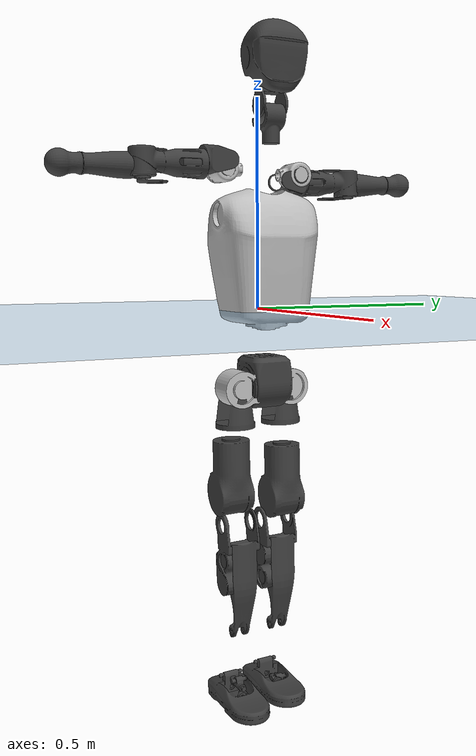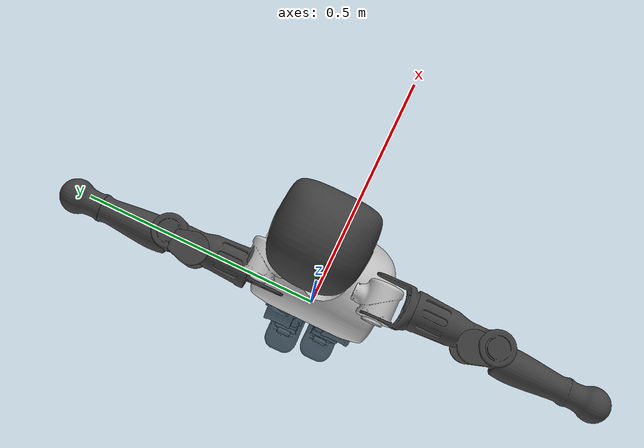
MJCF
<mujoco model="T1">
  <compiler angle="radian" assetdir="assets" balanceinertia="true" inertiafromgeom="false"/>

  <option timestep="0.005" density="1.2" viscosity="2e-05"/>

  <size nkey="1"/>

  <visual>
    <quality shadowsize="8192"/>
    <map shadowclip="0.5"/>
  </visual>

  <default>
    <default class="/">
      <joint armature="0.01" damping="0.01" frictionloss="0.1"/>
      <geom contype="0" conaffinity="0" group="1" solref="-1000 -80"/>
      <site size="0.01 0.005 0.005" group="5"/>
      <general forcelimited="true" biastype="affine" gainprm="25" biasprm="0 -25 -0.6"/>
      <default class="t1">
        <geom rgba="0.25 0.25 0.25 1"/>
        <default class="visual">
          <geom type="mesh" group="2"/>
        </default>
        <default class="collision">
          <geom group="3"/>
        </default>
        <default class="foot">
          <geom size="0.1115 0.05 0.015" type="box" condim="6" group="4" priority="1" solimp="0.015 1 0.015"/>
        </default>
        <default class="reward_collision_sphere">
          <geom group="5" rgba="1 0 0 1"/>
        </default>
      </default>
    </default>
  </default>

  <asset>
    <texture type="skybox" colorspace="auto" name="//unnamed_texture_0" builtin="gradient" rgb1="0.95 0.95 0.95" rgb2="0.95 0.95 0.95" width="100" height="600"/>
    <texture type="2d" colorspace="auto" name="texplane" builtin="checker" rgb1="0.345 0.575 0.748" rgb2="0.345 0.575 0.748" markrgb="1 1 1" width="512" height="512"/>
    <material name="MatPlane" class="/" texture="texplane" texuniform="true" texrepeat="2 2" specular="0.9"/>
    <mesh name="Trunk" class="/" file="Trunk.stl"/>
    <mesh name="H1" class="/" file="H1.stl"/>
    <mesh name="H2" class="/" file="H2.stl"/>
    <mesh name="AL1" class="/" file="AL1.stl"/>
    <mesh name="AL2" class="/" file="AL2.stl"/>
    <mesh name="AL3" class="/" file="AL3.stl"/>
    <mesh name="left_hand_link" class="/" file="left_hand_link.stl"/>
    <mesh name="AR1" class="/" file="AR1.stl"/>
    <mesh name="AR2" class="/" file="AR2.stl"/>
    <mesh name="AR3" class="/" file="AR3.stl"/>
    <mesh name="right_hand_link" class="/" file="right_hand_link.stl"/>
    <mesh name="Waist" class="/" file="Waist.stl"/>
    <mesh name="Hip_Pitch_Left" class="/" file="Hip_Pitch_Left.stl"/>
    <mesh name="Hip_Roll_Left" class="/" file="Hip_Roll_Left.stl"/>
    <mesh name="Hip_Yaw_Left" class="/" file="Hip_Yaw_Left.stl"/>
    <mesh name="Shank_Left" class="/" file="Shank_Left.stl"/>
    <mesh name="Ankle_Cross_Left" class="/" file="Ankle_Cross_Left.stl"/>
    <mesh name="left_foot_link" class="/" file="left_foot_link.stl"/>
    <mesh name="Hip_Pitch_Right" class="/" file="Hip_Pitch_Right.stl"/>
    <mesh name="Hip_Roll_Right" class="/" file="Hip_Roll_Right.stl"/>
    <mesh name="Hip_Yaw_Right" class="/" file="Hip_Yaw_Right.stl"/>
    <mesh name="Shank_Right" class="/" file="Shank_Right.stl"/>
    <mesh name="Ankle_Cross_Right" class="/" file="Ankle_Cross_Right.stl"/>
    <mesh name="right_foot_link" class="/" file="right_foot_link.stl"/>
  </asset>

  <worldbody>
    <geom name="floor" class="/" size="100 100 0.125" type="plane" group="0" material="MatPlane"/>
    <light name="toplight_shadow" class="/" pos="0 0 5" dir="0.0990148 0.0990148 -0.990148" type="directional" ambient="0.04 0.04 0.04" diffuse="0.55 0.55 0.55" specular="0.12 0.12 0.12"/>
    <light name="toplight_fill" class="/" pos="0 0 5" dir="0.0990148 0.0990148 -0.990148" type="directional" castshadow="false" ambient="0.04 0.04 0.04" diffuse="0.3 0.3 0.3" specular="0.08 0.08 0.08"/>
    <body name="trunk" childclass="t1" pos="-0.0138558 -0.0026933 0.00390278" quat="0.999993 0.00326273 -0.00189259 0.000237235">
      <inertial pos="0.0295319 -0.00213682 0.170066" quat="0.998464 0.0366868 -0.041499 -0.000964381" mass="8.29556" diaginertia="0.00645527 0.0104646 0.396049"/>
      <joint name="//unnamed_joint_0" type="free" armature="0" damping="0" frictionloss="0"/>
      <geom name="//unnamed_geom_1" class="visual" rgba="0.76 0.76 0.76 1" mesh="Trunk"/>
      <geom name="//unnamed_geom_2" class="collision" size="0.0699732 0.0932975 0.139946" pos="0.0371148 0 0.180331" type="box"/>
      <geom name="//unnamed_geom_3" class="reward_collision_sphere" size="0.107292" pos="0.0371148 0 0.150276"/>
      <geom name="//unnamed_geom_4" class="reward_collision_sphere" size="0.0139946" pos="0.0371148 0.0575948 0"/>
      <geom name="//unnamed_geom_5" class="reward_collision_sphere" size="0.0139946" pos="0.0371148 -0.0575948 0"/>
      <geom name="//unnamed_geom_6" class="reward_collision_sphere" size="0.0139946" pos="0.0371148 0.0725017 0.270497"/>
      <geom name="//unnamed_geom_7" class="reward_collision_sphere" size="0.0139946" pos="0.0371148 -0.0725017 0.270497"/>
      <site name="imu" pos="0.0905955 0.0552923 -0.073843" size="0.00932975"/>
      <camera name="track" pos="0 -1.35517 0" quat="0.707107 0.707107 0 0" mode="trackcom"/>
      <camera name="ego_camera" pos="0.0754667 0 0.63116" quat="-0.5 -0.5 0.5 0.5"/>
      <body name="H1" pos="0.0582205 0.0185398 0.384685" quat="0.99999 -0.00239271 0.00272823 -0.00266059">
        <inertial pos="0.012647 0.000920826 0.0980046" quat="0.718782 0.0478921 -0.0151596 0.693419" mass="0.304199" diaginertia="2.16519e-05 4.14612e-05 0.00126219"/>
        <joint name="AAHead_yaw" pos="0 0 0" axis="0.00636478 -0.0885136 0.996055" range="-1.47055 1.37581" armature="0.00220279" damping="0.0154335" frictionloss="0.0348807"/>
        <geom name="//unnamed_geom_8" class="visual" mesh="H1"/>
        <body name="H2" pos="-0.0101772 0.00395533 0.0903805" quat="0.999969 -0.00145247 -0.00383001 -0.00673368">
          <inertial pos="0.00106635 0.0198344 0.152425" quat="0.988657 0.0962084 -0.10293 -0.0520177" mass="0.458109" diaginertia="0.000232732 0.000292104 0.0124846"/>
          <joint name="Head_pitch" pos="0 0 0" axis="-0.00114468 -0.999984 0.0054692" stiffness="0.0623027" range="-1.40195 0.329982" armature="0.00344109" damping="0" frictionloss="0.0837257"/>
          <geom name="//unnamed_geom_9" class="visual" mesh="H2"/>
          <geom name="//unnamed_geom_10" class="collision" size="0.074638" pos="0.00618579 0 0.165304"/>
          <geom name="//unnamed_geom_11" class="reward_collision_sphere" size="0.0839678" pos="0.0123716 0 0.150276"/>
        </body>
      </body>
      <body name="AL1" pos="0.0248244 0.0546425 0.315854" quat="1 -0.000101013 7.57843e-05 0.000646654">
        <inertial pos="0.0182891 0.0122333 0.0153077" quat="0.489739 0.480412 -0.540927 0.486579" mass="0.309107" diaginertia="8.73396e-05 0.000131047 0.00199151"/>
        <joint name="Left_Shoulder_Pitch" pos="0 0 0" axis="-0.0155053 0.997544 -0.0683008" range="-3.53475 1.1831" armature="0.0036073" damping="0.0249887" frictionloss="0.159607"/>
        <geom name="//unnamed_geom_12" class="visual" rgba="0.76 0.76 0.76 1" mesh="AL1"/>
        <body name="AL2" pos="-0.00566193 0.0153674 -0.0139704" quat="0.999986 0.00270297 -0.0017158 0.00418029">
          <inertial pos="0.00476404 0.0342776 -0.0122962" quat="0.487709 0.509803 -0.489231 0.512732" mass="0.120456" diaginertia="2.27703e-05 2.91506e-05 0.00122776"/>
          <joint name="Left_Shoulder_Roll" pos="0 0 0" axis="-0.998555 -0.0486627 -0.0227935" stiffness="0.0400732" range="-1.85129 2.07918" armature="0.00869146" damping="0" frictionloss="0.122758"/>
          <geom name="//unnamed_geom_13" class="visual" mesh="AL2"/>
          <body name="AL3" pos="-0.0180593 0.0459102 -0.000291341" quat="0.999978 0.00337846 -0.00560794 -0.00137717">
            <inertial pos="0.00194766 0.0494051 -0.0159296" quat="0.660958 0.748836 -0.000667109 0.0487723" mass="0.801236" diaginertia="0.000827205 0.00158219 0.00419918"/>
            <joint name="Left_Elbow_Pitch" pos="0 0 0" axis="-0.0131568 -0.999474 0.0296457" stiffness="0.0502301" range="-2.15164 1.94535" armature="0.0166125" damping="0.0666847" frictionloss="0.112373"/>
            <geom name="//unnamed_geom_14" class="visual" mesh="AL3"/>
            <geom name="//unnamed_geom_15" class="collision" size="0.0279893 0.0699732" pos="0 0.0338793 0" quat="0.707105 0.707108 0 0" type="cylinder"/>
            <geom name="//unnamed_geom_16" class="reward_collision_sphere" size="0.0335871"/>
            <body name="left_hand_link" pos="-0.0102579 0.100727 -0.00302213" quat="0.999971 0.00690522 0.00253258 0.00180655">
              <inertial pos="-0.0199393 0.0905187 0.0077243" quat="0.722027 0.690286 -0.0461568 -0.00720855" mass="0.336703" diaginertia="0.000845052 0.0012553 0.00216574"/>
              <joint name="Left_Elbow_Yaw" pos="0 0 0" axis="-0.0692385 0.0044654 0.99759" range="-2.68551 0.263322" armature="0.00153718" damping="0" frictionloss="0.0208916"/>
              <geom name="//unnamed_geom_17" class="visual" mesh="left_hand_link"/>
              <geom name="//unnamed_geom_18" class="collision" size="0.0279893 0.0816354" pos="0 0.0880862 0" quat="0.707105 0.707108 0 0" type="cylinder"/>
              <geom name="//unnamed_geom_19" class="reward_collision_sphere" size="0.0466488"/>
              <geom name="//unnamed_geom_20" class="reward_collision_sphere" size="0.0326541" pos="0 0.0745344 0"/>
              <geom name="//unnamed_geom_21" class="reward_collision_sphere" size="0.0326541" pos="0 0.145681 0"/>
            </body>
          </body>
        </body>
      </body>
      <body name="AR1" pos="0.0419344 -0.0547207 0.323236" quat="0.99998 0.000224363 -8.96447e-05 0.00625082">
        <inertial pos="-0.0122179 -0.040161 -0.00137623" quat="0.504542 0.49364 -0.500999 0.500756" mass="0.475866" diaginertia="0.000143645 0.000197564 0.00244878"/>
        <joint name="Right_Shoulder_Pitch" pos="0 0 0" axis="0.025562 -0.999494 -0.0189455" range="-1.32208 3.11808" armature="0.00342171" damping="0.101058" frictionloss="0.153318"/>
        <geom name="//unnamed_geom_22" class="visual" rgba="0.76 0.76 0.76 1" mesh="AR1"/>
        <body name="AR2" pos="0.00580606 -0.0430899 0.017596" quat="0.999993 -6.86533e-05 -0.00063741 -0.00367767">
          <inertial pos="0.0151204 -0.041027 0.0187114" quat="0.516574 0.473222 -0.53249 0.475044" mass="0.102192" diaginertia="3.00616e-05 5.01573e-05 0.000964114"/>
          <joint name="Right_Shoulder_Roll" pos="0 0 0" axis="-0.99847 0.0448892 -0.032305" stiffness="0.0833626" range="-2.12135 1.71017" armature="0.00457437" damping="0" frictionloss="0.115604"/>
          <geom name="//unnamed_geom_23" class="visual" mesh="AR2"/>
          <body name="AR3" pos="0.00486234 -0.054644 -0.00971796" quat="0.999997 0.000777146 -0.00162139 -0.00160607">
            <inertial pos="0.0177564 -0.0680476 0.0054825" quat="0.732986 0.678463 -0.0374093 -0.0319165" mass="0.807077" diaginertia="0.00123271 0.00181503 0.00354556"/>
            <joint name="Right_Elbow_Pitch" pos="0 0 0" axis="-0.0224134 0.998163 -0.0562962" stiffness="0.0783024" range="-2.21373 2.54232" armature="0.0109631" damping="0.0423865" frictionloss="0.176976"/>
            <geom name="//unnamed_geom_24" class="visual" mesh="AR3"/>
            <geom name="//unnamed_geom_25" class="collision" size="0.0279893 0.0699732" pos="0 -0.0338793 0" quat="0.707105 0.707108 0 0" type="cylinder"/>
            <geom name="//unnamed_geom_26" class="reward_collision_sphere" size="0.0335871"/>
            <body name="right_hand_link" pos="-0.0136339 -0.112508 -0.00772805" quat="0.999998 0.000808267 0.00173293 -0.00101996">
              <inertial pos="-0.00566291 -0.0663522 -0.0156352" quat="0.705323 0.708869 -0.00483517 0.000511653" mass="0.301691" diaginertia="0.000719807 0.00152871 0.00204115"/>
              <joint name="Right_Elbow_Yaw" pos="0 0 0" axis="-0.0052509 -0.0259673 0.999649" range="-0.264216 2.64184" armature="0.00859173" damping="0.0540037" frictionloss="0.174241"/>
              <geom name="//unnamed_geom_27" class="visual" mesh="right_hand_link"/>
              <geom name="//unnamed_geom_28" class="collision" size="0.0279893 0.0816354" pos="0 -0.0880862 0" quat="0.707105 0.707108 0 0" type="cylinder"/>
              <geom name="//unnamed_geom_29" class="reward_collision_sphere" size="0.0466488"/>
              <geom name="//unnamed_geom_30" class="reward_collision_sphere" size="0.0326541" pos="0 -0.0745344 0"/>
              <geom name="//unnamed_geom_31" class="reward_collision_sphere" size="0.0326541" pos="0 -0.145681 0"/>
            </body>
          </body>
        </body>
      </body>
      <body name="Waist" pos="0.051584 -0.00171765 -0.182482" quat="0.99999 0.00433529 0.00105355 0.000986039">
        <inertial pos="0.000211471 0.00354167 0.0160307" quat="0.983979 -0.0501991 -0.167671 -0.0339454" mass="2.37997" diaginertia="0.000353512 0.000653648 0.0263789"/>
        <joint name="Waist" pos="0 0 0" axis="-0.0431715 -0.0648831 0.996959" stiffness="0.0178696" range="-1.30834 1.8293" armature="0.00777731" damping="0.0249698" frictionloss="0.173871"/>
        <geom name="//unnamed_geom_32" class="visual" mesh="Waist"/>
        <body name="Hip_Pitch_Left" pos="-0.00323697 0.06252 0.0093473" quat="0.999998 0.00179592 0.000402939 -0.000966983">
          <inertial pos="0.00804214 0.0107116 -0.0375244" quat="0.983428 0.177053 0.0103443 -0.0376095" mass="0.857038" diaginertia="0.000202964 0.000178998 0.00797771"/>
          <joint name="Left_Hip_Pitch" pos="0 0 0" axis="-0.00687857 0.999398 0.0340079" range="-1.60291 1.52389" armature="0.00340753" damping="0" frictionloss="0.0997177"/>
          <geom name="//unnamed_geom_33" class="visual" rgba="0.76 0.76 0.76 1" mesh="Hip_Pitch_Left"/>
          <body name="Hip_Roll_Left" pos="-0.0176488 -0.00843086 -0.0371254" quat="0.999965 0.000690262 -0.00333758 0.00759013">
            <inertial pos="-0.0131912 -0.00435946 -0.0780203" quat="0.69648 0.00572867 0.00698567 0.717519" mass="0.461384" diaginertia="0.000241681 0.00026013 0.00442474"/>
            <joint name="Left_Hip_Roll" pos="0 0 0" axis="-0.996671 0.0815074 -0.00187598" range="-1.93207 0.315425" armature="0.0157701" damping="0.0655957" frictionloss="0.143622"/>
            <geom name="//unnamed_geom_34" class="visual" mesh="Hip_Roll_Left"/>
            <geom name="//unnamed_geom_35" class="reward_collision_sphere" size="0.0513137"/>
            <body name="Hip_Yaw_Left" pos="-0.0127392 0.00952623 -0.135797" quat="0.999965 -0.00430578 -0.00710184 0.00117713">
              <inertial pos="0.013947 0.00855981 -0.124485" quat="0.70613 0.00555432 -0.018524 0.707818" mass="2.02919" diaginertia="0.00197032 0.00372699 0.0202319"/>
              <joint name="Left_Hip_Yaw" pos="0 0 0" axis="-0.0430638 -0.016067 -0.998943" stiffness="0.0858385" range="-1.37945 0.668674" armature="0.00843019" damping="0" frictionloss="0.0189637"/>
              <geom name="//unnamed_geom_36" class="visual" mesh="Hip_Yaw_Left"/>
              <geom name="//unnamed_geom_37" class="collision" size="0.0466488 0.074638" type="cylinder"/>
              <body name="Shank_Left" pos="-0.0166409 -0.0177409 -0.191147" quat="1 -0.000325064 -0.000126733 -7.32726e-05">
                <inertial pos="0.0151898 -0.00911478 -0.196442" quat="0.989085 0.044143 0.0149646 0.139779" mass="1.54763" diaginertia="0.0030069 0.00351511 0.0110999"/>
                <joint name="Left_Knee_Pitch" pos="0 0 0" axis="-0.0219858 0.996923 0.0752439" stiffness="0.0325594" range="-0.0727014 2.03662" armature="0.0163291" damping="0" frictionloss="0.00835293"/>
                <geom name="//unnamed_geom_38" class="visual" mesh="Shank_Left"/>
                <geom name="//unnamed_geom_39" class="collision" size="0.0466488 0.0699732" pos="0 0 -0.180331" type="cylinder"/>
                <geom name="//unnamed_geom_40" class="reward_collision_sphere" size="0.0606434"/>
                <body name="Ankle_Cross_Left" pos="-0.00544548 0.00623714 -0.432084" quat="0.999995 0.000103414 -0.000732371 0.00309556">
                  <inertial pos="-0.00540072 -0.0081832 -0.0059494" quat="0.435641 0.564606 0.529645 0.459253" mass="0.0499645" diaginertia="1.89436e-06 2.99981e-06 6.60774e-05"/>
                  <joint name="Left_Ankle_Pitch" pos="0 0 0" axis="0.0713183 0.99726 -0.0196478" stiffness="0.0516926" range="-0.908414 0.630835" armature="0.000874206" damping="0.0481622" frictionloss="0.14672"/>
                  <geom name="//unnamed_geom_41" class="visual" mesh="Ankle_Cross_Left"/>
                  <body name="left_foot_link" pos="-0.019128 -0.00693388 -0.00687058" quat="1 0.000328391 -0.000663744 0.000499685">
                    <inertial pos="0.0179145 -0.0138595 -0.0130173" quat="-0.0199309 0.616822 0.0274723 0.786371" mass="0.562868" diaginertia="0.000238301 0.000280683 0.0186397"/>
                    <joint name="Left_Ankle_Roll" pos="0 0 0" axis="-0.999845 0.0141068 -0.0105482" range="-0.700674 0.678524" armature="0.00794614" damping="0.103152" frictionloss="0.125622"/>
                    <geom name="//unnamed_geom_42" class="visual" mesh="left_foot_link"/>
                    <geom name="left_foot" class="foot" size="0.15304 0.075868 0.0206419" pos="0.00618579 0 -0.0225414"/>
                    <geom name="//unnamed_geom_44" class="reward_collision_sphere" size="0.0485147" pos="0.00618579 0 -0.0225414"/>
                    <geom name="//unnamed_geom_45" class="reward_collision_sphere" size="0.0279893" pos="0.058765 -0.0155845 -0.0225414"/>
                    <geom name="//unnamed_geom_46" class="reward_collision_sphere" size="0.0279893" pos="-0.0433006 -0.0155845 -0.0225414"/>
                    <site name="left_foot" class="foot" pos="0.00618579 0 -0.0225414" size="0.00932975"/>
                  </body>
                </body>
              </body>
            </body>
          </body>
        </body>
        <body name="Hip_Pitch_Right" pos="0.0134978 -0.0778705 0.0138776" quat="0.999993 0.000446951 0.00341174 -0.00159901">
          <inertial pos="0.00743345 0.00481849 -0.0106232" quat="0.973584 -0.220022 0.0602795 -0.00957294" mass="0.766638" diaginertia="0.0002024 0.000163855 0.00822684"/>
          <joint name="Right_Hip_Pitch" pos="0 0 0" axis="0.0537723 -0.998431 -0.0156198" stiffness="0.0551627" range="-1.17195 1.42983" armature="0.00774603" damping="0" frictionloss="0.176702"/>
          <geom name="//unnamed_geom_47" class="visual" rgba="0.76 0.76 0.76 1" mesh="Hip_Pitch_Right"/>
          <body name="Hip_Roll_Right" pos="-0.017986 0.000884581 -0.0397583" quat="1 0.000116102 0.000795205 0.000467514">
            <inertial pos="0.0101557 0.0153033 -0.0962998" quat="0.701092 0.0394361 0.00297357 0.711973" mass="0.378084" diaginertia="0.000194687 0.000294171 0.00368821"/>
            <joint name="Right_Hip_Roll" pos="0 0 0" axis="-0.995999 -0.0893161 -0.00301444" stiffness="0.0338719" range="-0.26148 1.73603" armature="0.0163096" damping="0.00375473" frictionloss="0.0568088"/>
            <geom name="//unnamed_geom_48" class="visual" mesh="Hip_Roll_Right"/>
            <geom name="//unnamed_geom_49" class="reward_collision_sphere" size="0.0513137"/>
            <body name="Hip_Yaw_Right" pos="-0.00243689 -0.0111343 -0.107264" quat="0.99999 0.00280453 0.000226819 0.00341329">
              <inertial pos="-0.0166177 -0.0174728 -0.120904" quat="0.75425 -0.104772 -0.0287129 0.647538" mass="1.72057" diaginertia="0.00223635 0.00402727 0.0245261"/>
              <joint name="Right_Hip_Yaw" pos="0 0 0" axis="0.00140806 0.00865363 -0.999962" range="-0.814653 0.823928" armature="0.0122056" damping="0.0460618" frictionloss="0.0923662"/>
              <geom name="//unnamed_geom_50" class="visual" mesh="Hip_Yaw_Right"/>
              <geom name="//unnamed_geom_51" class="collision" size="0.0466488 0.074638" type="cylinder"/>
              <body name="Shank_Right" pos="-0.0165731 0.0178117 -0.217006" quat="0.999999 -0.00092548 -0.00043001 -0.000262185">
                <inertial pos="0.0149615 -0.0198069 -0.172671" quat="0.998233 0.00292691 0.0546202 -0.0232166" mass="1.05765" diaginertia="0.00347979 0.00537184 0.0157082"/>
                <joint name="Right_Knee_Pitch" pos="0 0 0" axis="-0.0165555 -0.999374 -0.0312578" range="-2.09278 -0.102975" armature="0.00915998" damping="0" frictionloss="0.146793"/>
                <geom name="//unnamed_geom_52" class="visual" mesh="Shank_Right"/>
                <geom name="//unnamed_geom_53" class="collision" size="0.0466488 0.0699732" pos="0 0 -0.180331" type="cylinder"/>
                <geom name="//unnamed_geom_54" class="reward_collision_sphere" size="0.0606434"/>
                <body name="Ankle_Cross_Right" pos="-0.00280676 -0.0022622 -0.412396" quat="0.999996 -0.00264505 -8.58425e-05 9.42255e-05">
                  <inertial pos="0.0068109 0.0163275 -0.0211781" quat="0.485334 0.508272 0.508752 0.497274" mass="0.0552805" diaginertia="2.47163e-06 5.5009e-06 0.000111391"/>
                  <joint name="Right_Ankle_Pitch" pos="0 0 0" axis="-0.0696038 -0.997256 0.0252177" range="-0.589398 0.884265" armature="0.00201307" damping="0.0966066" frictionloss="0.113629"/>
                  <geom name="//unnamed_geom_55" class="visual" mesh="Ankle_Cross_Right"/>
                  <body name="right_foot_link" pos="-0.00619911 -0.000469598 -0.0352152" quat="1 -0.000150449 5.19803e-05 -0.000203723">
                    <inertial pos="0.00843768 -0.0105031 -0.0306939" quat="-0.0495951 0.636818 -0.037292 0.768513" mass="0.603553" diaginertia="0.000190958 0.000294562 0.0175155"/>
                    <joint name="Right_Ankle_Roll" pos="0 0 0" axis="-0.999765 -0.0204697 -0.00713582" stiffness="0.0189004" range="-0.350018 0.710191" armature="0.0136157" damping="0.0378171" frictionloss="0.15833"/>
                    <geom name="//unnamed_geom_56" class="visual" mesh="right_foot_link"/>
                    <geom name="right_foot" class="foot" size="0.0795454 0.0374059 0.0086042" pos="0.00618579 0 -0.0225414"/>
                    <geom name="//unnamed_geom_58" class="reward_collision_sphere" size="0.037319"/>
                    <geom name="//unnamed_geom_59" class="reward_collision_sphere" size="0.0279893" pos="0.00618579 0 -0.0225414"/>
                    <geom name="//unnamed_geom_60" class="reward_collision_sphere" size="0.0279893" pos="0.058765 0.0155845 -0.0225414"/>
                    <geom name="//unnamed_geom_61" class="reward_collision_sphere" size="0.0279893" pos="-0.0433006 0.0155845 -0.0225414"/>
                    <site name="right_foot" class="foot" pos="0.00618579 0 -0.0225414" size="0.00932975"/>
                  </body>
                </body>
              </body>
            </body>
          </body>
        </body>
      </body>
    </body>
  </worldbody>

  <contact>
    <pair class="/" geom1="floor" geom2="left_foot" name="//unnamed_contact_0"/>
    <pair class="/" geom1="floor" geom2="right_foot" name="//unnamed_contact_1"/>
  </contact>

  <actuator>
    <general name="AAHead_yaw" class="/" joint="AAHead_yaw" forcerange="-3.03379 3.03379" gainprm="17.2278" biasprm="0 -17.2278 -0.78109"/>
    <general name="Head_pitch" class="/" joint="Head_pitch" forcerange="-4.61066 4.61066" gainprm="17.2278" biasprm="0 -17.2278 -0.78109"/>
    <general name="Left_Shoulder_Pitch" class="/" joint="Left_Shoulder_Pitch" forcerange="-13.4 13.4" gainprm="17.2278" biasprm="0 -17.2278 -0.78109"/>
    <general name="Left_Shoulder_Roll" class="/" joint="Left_Shoulder_Roll" forcerange="-19.806 19.806" gainprm="17.2278" biasprm="0 -17.2278 -0.78109"/>
    <general name="Left_Elbow_Pitch" class="/" joint="Left_Elbow_Pitch" forcerange="-7.47613 7.47613" gainprm="17.2278" biasprm="0 -17.2278 -0.78109"/>
    <general name="Left_Elbow_Yaw" class="/" joint="Left_Elbow_Yaw" forcerange="-8.85421 8.85421" gainprm="17.2278" biasprm="0 -17.2278 -0.78109"/>
    <general name="Right_Shoulder_Pitch" class="/" joint="Right_Shoulder_Pitch" forcerange="-23.8785 23.8785" gainprm="17.2278" biasprm="0 -17.2278 -0.78109"/>
    <general name="Right_Shoulder_Roll" class="/" joint="Right_Shoulder_Roll" forcerange="-22.2315 22.2315" gainprm="17.2278" biasprm="0 -17.2278 -0.78109"/>
    <general name="Right_Elbow_Pitch" class="/" joint="Right_Elbow_Pitch" forcerange="-15.64 15.64" gainprm="17.2278" biasprm="0 -17.2278 -0.78109"/>
    <general name="Right_Elbow_Yaw" class="/" joint="Right_Elbow_Yaw" forcerange="-11.3021 11.3021" gainprm="17.2278" biasprm="0 -17.2278 -0.78109"/>
    <general name="Waist" class="/" joint="Waist" forcerange="-36.0588 36.0588" gainprm="17.2278" biasprm="0 -17.2278 -0.78109"/>
    <general name="Left_Hip_Pitch" class="/" joint="Left_Hip_Pitch" forcerange="-39.9589 39.9589" gainprm="17.2278" biasprm="0 -17.2278 -0.78109"/>
    <general name="Left_Hip_Roll" class="/" joint="Left_Hip_Roll" forcerange="-20.0761 20.0761" gainprm="17.2278" biasprm="0 -17.2278 -0.78109"/>
    <general name="Left_Hip_Yaw" class="/" joint="Left_Hip_Yaw" forcerange="-43.7199 43.7199" gainprm="17.2278" biasprm="0 -17.2278 -0.78109"/>
    <general name="Left_Knee_Pitch" class="/" joint="Left_Knee_Pitch" forcerange="-30.9427 30.9427" gainprm="17.2278" biasprm="0 -17.2278 -0.78109"/>
    <general name="Left_Ankle_Pitch" class="/" joint="Left_Ankle_Pitch" forcerange="-27.1762 27.1762" gainprm="17.2278" biasprm="0 -17.2278 -0.78109"/>
    <general name="Left_Ankle_Roll" class="/" joint="Left_Ankle_Roll" forcerange="-16.4679 16.4679" gainprm="17.2278" biasprm="0 -17.2278 -0.78109"/>
    <general name="Right_Hip_Pitch" class="/" joint="Right_Hip_Pitch" forcerange="-51.1771 51.1771" gainprm="17.2278" biasprm="0 -17.2278 -0.78109"/>
    <general name="Right_Hip_Roll" class="/" joint="Right_Hip_Roll" forcerange="-35.6367 35.6367" gainprm="17.2278" biasprm="0 -17.2278 -0.78109"/>
    <general name="Right_Hip_Yaw" class="/" joint="Right_Hip_Yaw" forcerange="-38.4127 38.4127" gainprm="17.2278" biasprm="0 -17.2278 -0.78109"/>
    <general name="Right_Knee_Pitch" class="/" joint="Right_Knee_Pitch" forcerange="-87.9658 87.9658" gainprm="17.2278" biasprm="0 -17.2278 -0.78109"/>
    <general name="Right_Ankle_Pitch" class="/" joint="Right_Ankle_Pitch" forcerange="-30.4313 30.4313" gainprm="17.2278" biasprm="0 -17.2278 -0.78109"/>
    <general name="Right_Ankle_Roll" class="/" joint="Right_Ankle_Roll" forcerange="-8.86187 8.86187" gainprm="17.2278" biasprm="0 -17.2278 -0.78109"/>
  </actuator>

  <sensor>
    <gyro site="imu" name="imu_angular_velocity"/>
    <velocimeter site="imu" name="imu_linear_velocity"/>
    <framelinvel objtype="site" objname="left_foot" name="left_foot_global_linear_velocity"/>
    <framelinvel objtype="site" objname="right_foot" name="right_foot_global_linear_velocity"/>
  </sensor>

  <keyframe>
    <key name="home" qpos="0 0 0.6385 1 0 0 0 0 0 0 1.4 0 -0.4 0 -1.4 0 0.4 0 -0.4 0 0 0.8 -0.4 0 0.4 0 0 -0.8 0.4 0"/>
  </keyframe>
</mujoco>
